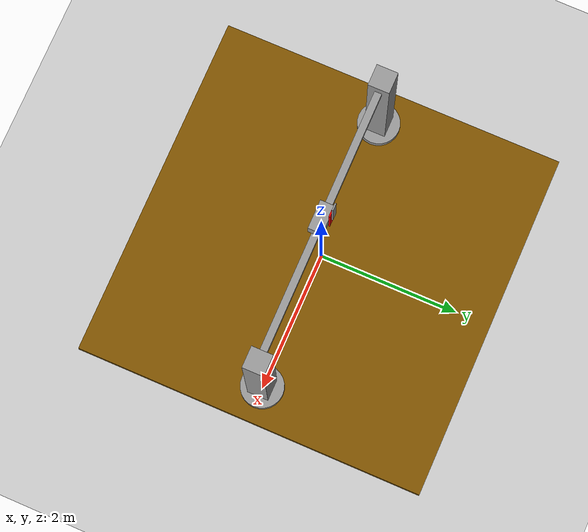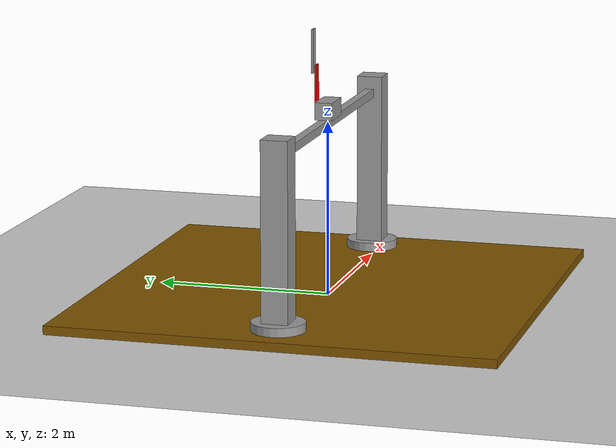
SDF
<?xml version ="1.0" ?>
<sdf version ="1.5">
    <world name ="pendulum_world">

        <include>
            <uri>model://sun</uri>
        </include>

        <include>
            <uri>model://ground_plane</uri>
        </include>

        <include>
            <uri>model://Pendulum</uri>
        </include>

    </world>
</sdf>
